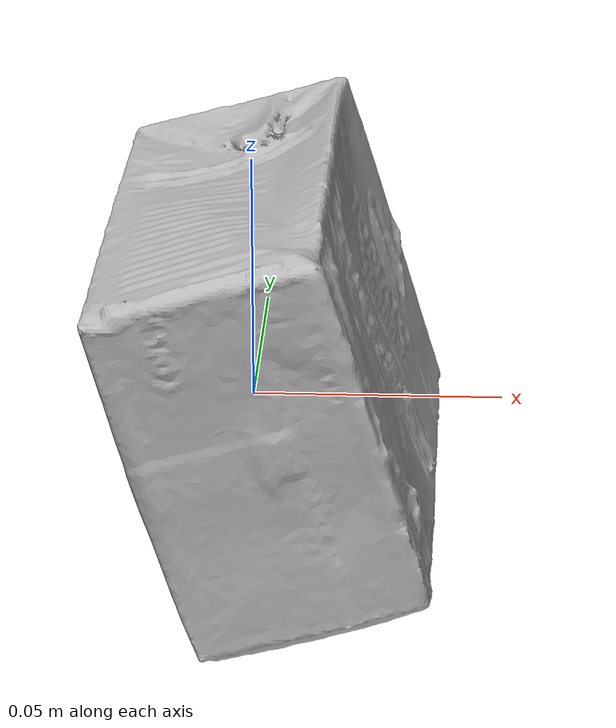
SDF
<?xml version='1.0'?>
<sdf version="1.4">
  <model name="TomatoSauce">
    <static>false</static>
    <link name="link">
      <inertial>
        <pose>0.0034847055462718 0.017455858079782505 0.0006656857700984596 -1.5865058902532132 0.31388352974820516 3.120611101364503</pose>
        <mass>0.042191571065839435</mass>
        <inertia>
          <ixx>6.310315729246689e-05</ixx>
          <ixy>4.374814506700884e-21</ixy>
          <ixz>6.1603529609561565e-21</ixz>
          <iyy>5.066923897406021e-05</iyy>
          <iyz>1.6055967318355717e-20</iyz>
          <izz>2.9413992348614192e-05</izz>
        </inertia>
      </inertial>
      <collision name="collision">
        <geometry>
          <mesh>
            <!-- Use a downsampled mesh for collisions -->
            <uri>model:///TomatoSauce/TomatoSauce_250_collision.obj</uri>
	        </mesh>
        </geometry>
        <surface>
      </surface>
      </collision>
      <visual name="visual">
        <geometry>
          <mesh>
            <uri>model:///TomatoSauce/TomatoSauce_25k_tex.obj</uri>
	        </mesh>
        </geometry>
        <material>
          <script>
            <uri>model:///TomatoSauce/TomatoSauce.material</uri>
            <name>TomatoSauce</name>
          </script>
        </material>
      </visual>
    </link>
  </model>
</sdf>
